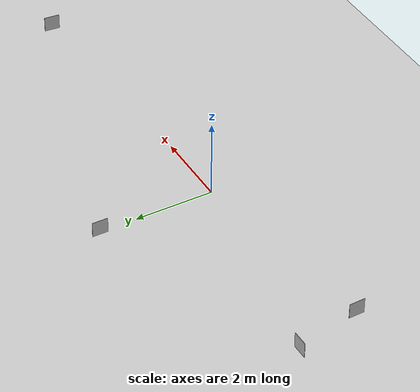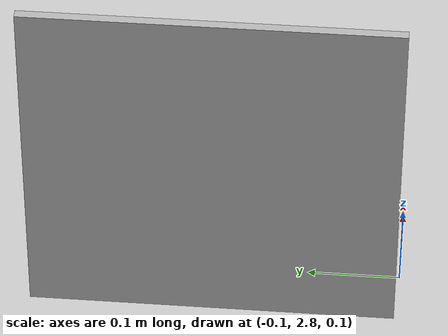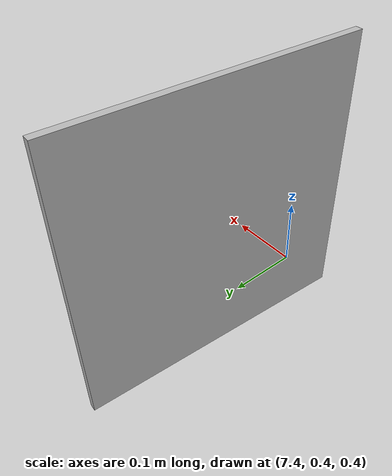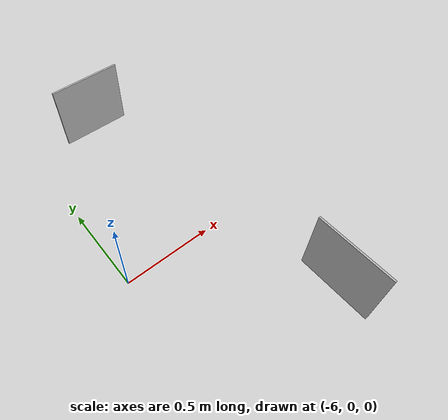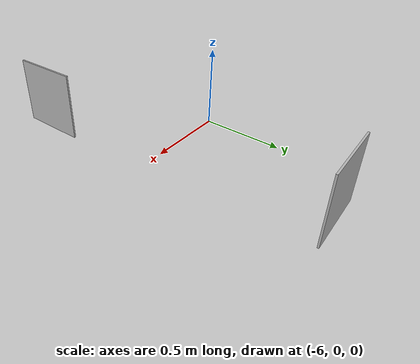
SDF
<sdf version="1.6">
 <world name="default">
  <include><uri>model://sun</uri></include>
  <include><uri>model://ground_plane</uri></include>
  <include>
   <uri>model://qr_livingroom</uri>
   <static>true</static>
   <pose>-0.123 3.004 0.265 0 0 1.5707</pose>
  </include>
  <include><uri>model://qr_kitchen</uri><static>true</static><pose>7.385 0.550 0.552 0 0 -1.65</pose></include>
  <include>
   <uri>model://qr_bedroom</uri>
   <static>true</static>
   <pose>-5.245 -0.663 0.256 0 0 -1.542</pose>
  </include>
  <include><uri>model://qr_corridor</uri><static>true</static><pose>-5.575 1.002 0.216 0 0 0</pose></include>
 </world>
</sdf>

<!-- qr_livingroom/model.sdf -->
<sdf version="1.4">
  <model name="qr_livingroom">
    <static>true</static>

    <link name="link">
      <visual name="visual">
        <geometry>
          <box>
            <size>0.4 0.01 0.4</size>
          </box>
        </geometry>

        <material>
          <script>
            <uri>model://qr_livingroom/materials/scripts</uri>
            <uri>model://qr_livingroom/materials/textures</uri>
            <name>Gazebo/QR</name>
          </script>
        </material>
      </visual>
    </link>
  </model>
</sdf>

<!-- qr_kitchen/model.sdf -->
<sdf version="1.6">
  <model name="qr_kitchen">
    <static>true</static>

    <link name="link">
      <visual name="visual">
        <geometry>
          <box>
            <size>0.4 0.01 0.4</size> <!-- ince poster -->
          </box>
        </geometry>

        <material>
          <script>
            <uri>model://qr_kitchen/materials/scripts</uri>
            <uri>model://qr_kitchen/materials/textures</uri>
            <name>QRKitchen</name>
          </script>
        </material>
      </visual>
    </link>
  </model>
</sdf>

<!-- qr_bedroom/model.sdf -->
<sdf version="1.6">
  <model name="qr_bedroom">
    <static>true</static>

    <link name="link">
      <visual name="visual">
        <geometry>
          <box>
            <size>0.4 0.01 0.4</size> <!-- ince poster -->
          </box>
        </geometry>

        <material>
          <script>
            <uri>model://qr_bedroom/materials/scripts</uri>
            <uri>model://qr_bedroom/materials/textures</uri>
            <name>QRBedroom</name>
          </script>
        </material>
      </visual>
    </link>
  </model>
</sdf>

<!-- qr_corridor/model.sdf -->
<sdf version="1.6">
  <model name="qr_corridor">
    <static>true</static>

    <link name="link">
      <visual name="visual">
        <geometry>
          <box>
            <size>0.4 0.01 0.4</size> <!-- ince poster -->
          </box>
        </geometry>

        <material>
          <script>
            <uri>model://qr_corridor/materials/scripts</uri>
            <uri>model://qr_corridor/materials/textures</uri>
            <name>QRCorridor</name>
          </script>
        </material>
      </visual>
    </link>
  </model>
</sdf>
